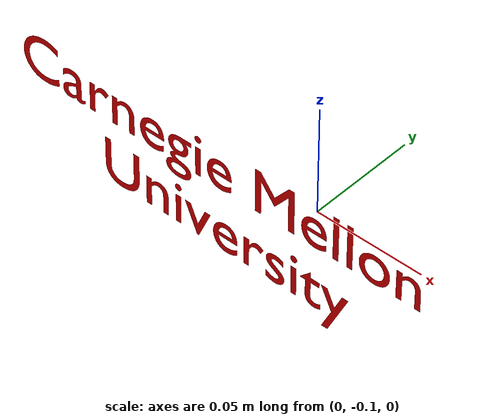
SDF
<?xml version="1.0" ?>
<sdf version="1.6">
  <model name="cmu_text">
    <link name="text">
      <visual name="visual">
       <geometry>
          <mesh>
            <uri>model://cmu_text/meshes/Spirit40_CMU_Text_transformed.stl</uri>
         </mesh>
        </geometry>
        <material>
          <ambient>0.6 0.0 0.0 1</ambient>
          <diffuse>1.0 0.0 0.0 1</diffuse>
          <specular>0.1 0.0 0.0 1</specular>
          <emissive>0.2 0.0 0.0 1</emissive>
        </material>
      </visual>
      <inertial>
        <mass>0.001</mass>
        <inertia>
          <ixx>0.00000000</ixx>
          <ixy>0.00000000</ixy>
          <ixz>0.00000000</ixz>
          <iyy>0.00000000</iyy>
          <iyz>0.00000000</iyz>
          <izz>0.00000000</izz>
        </inertia>
      </inertial>
    </link>
  </model>
</sdf>
